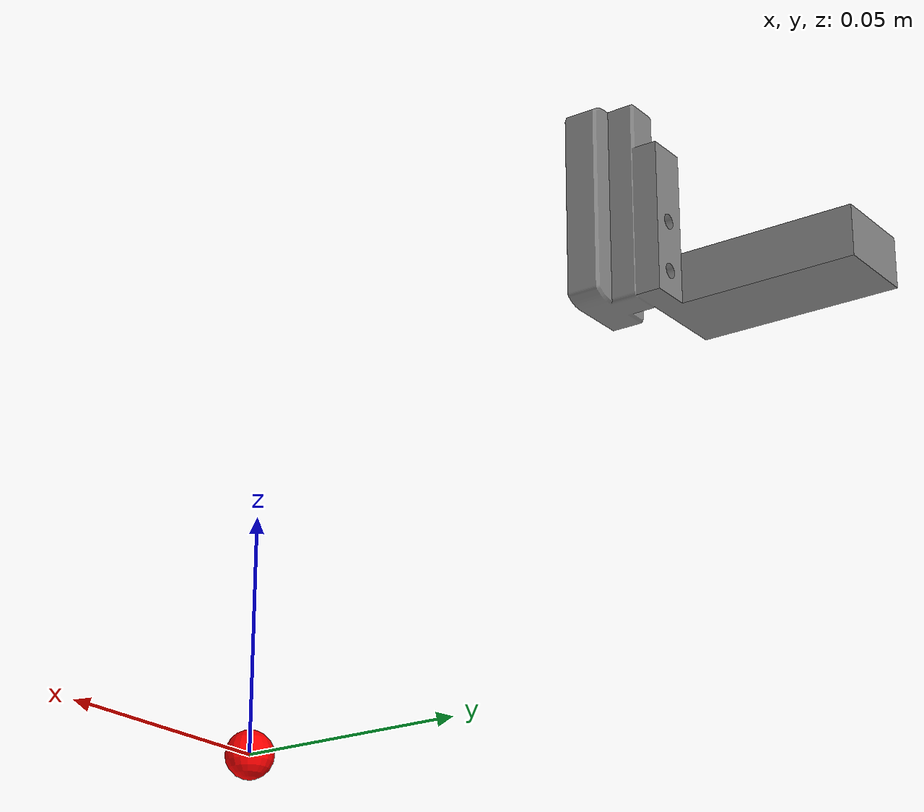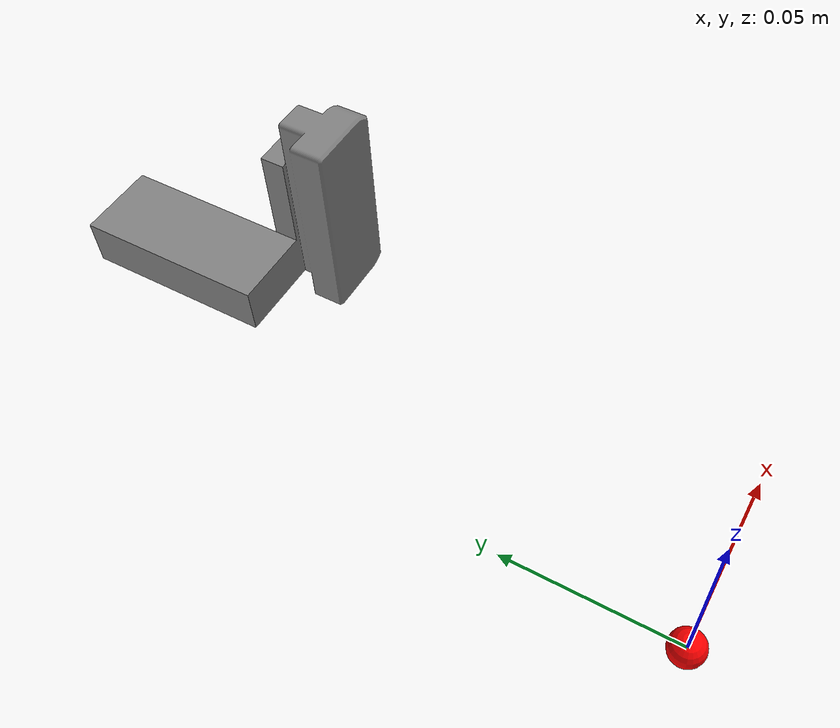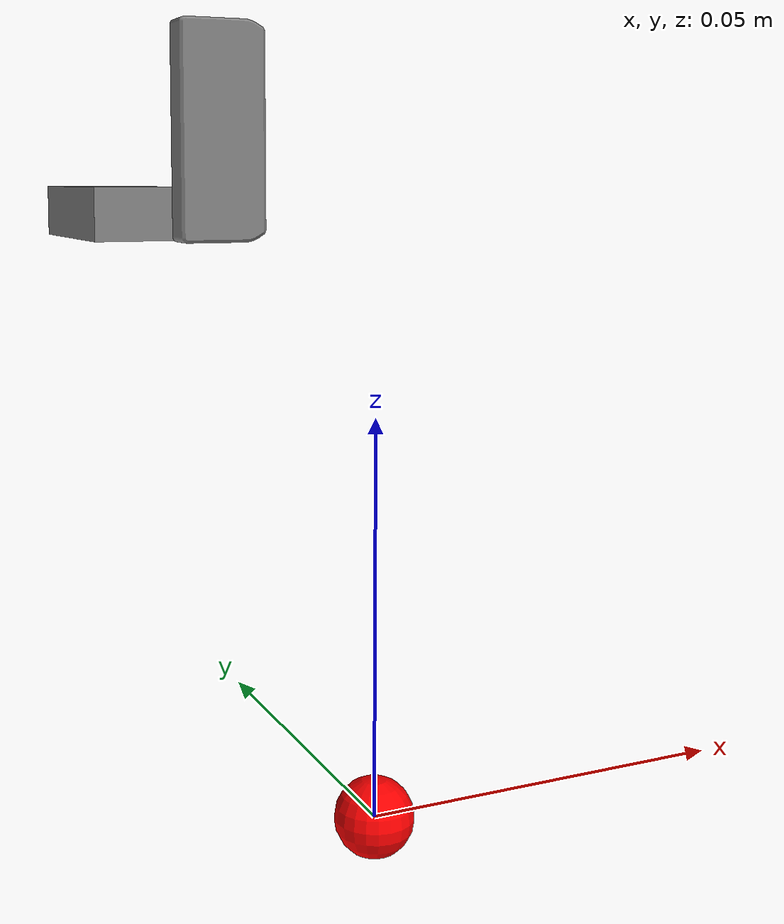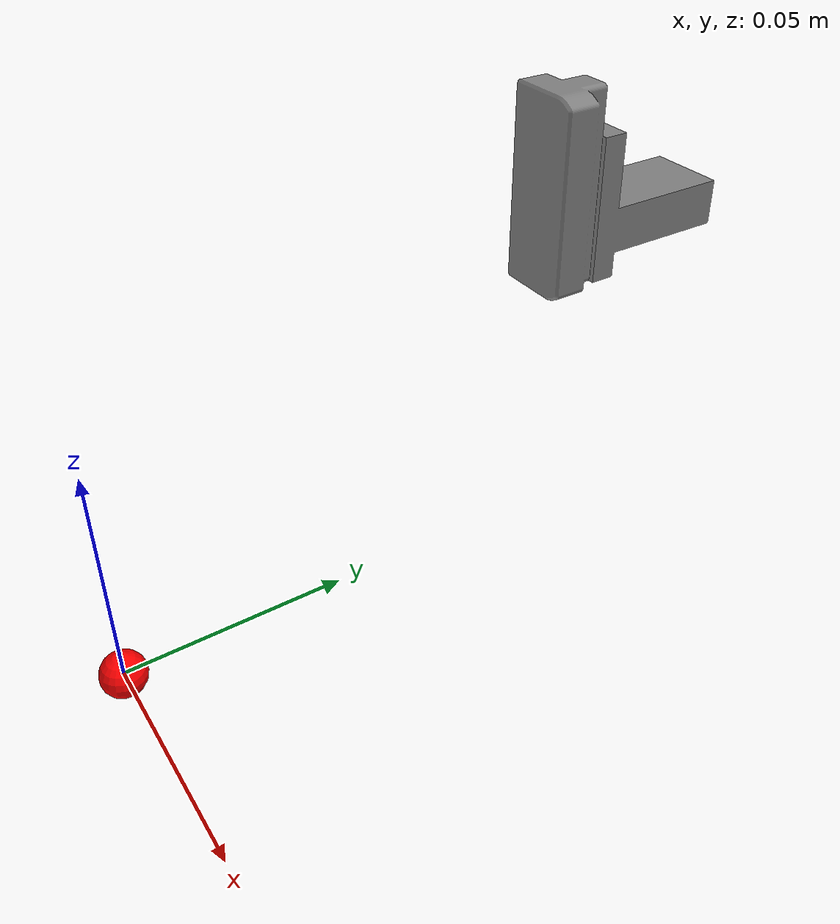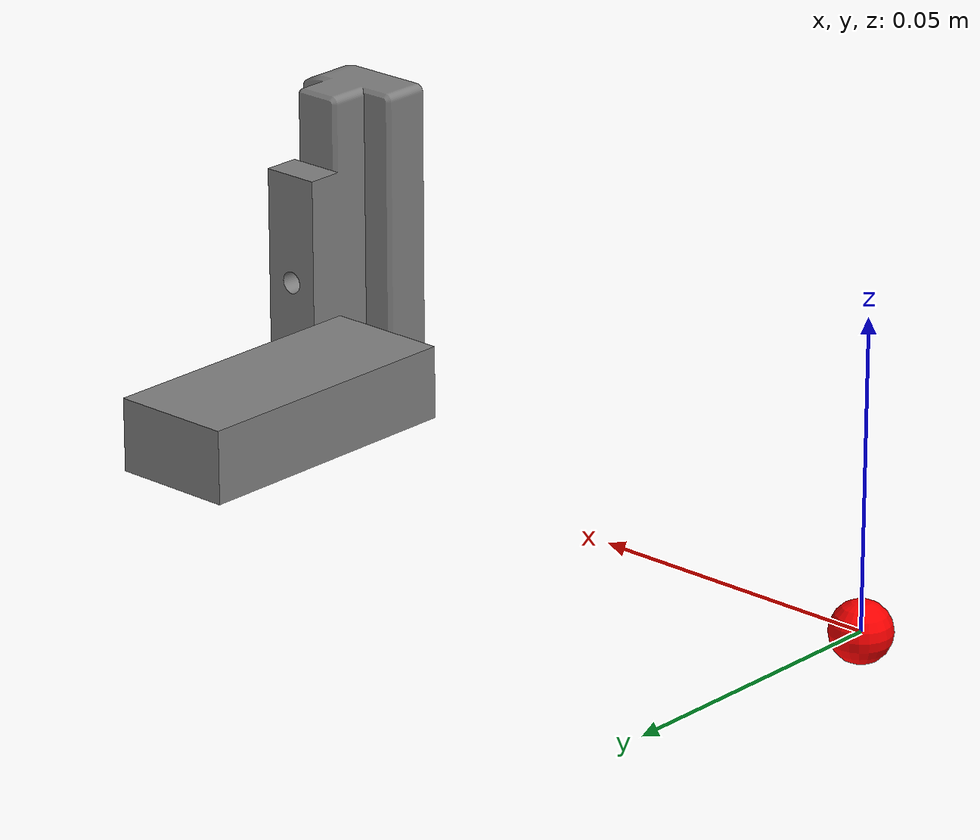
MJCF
<!--
单独查看xml文件的内容，方便调试和验证模型定义。
-->

<mujoco model="mesh_checker">
    <compiler angle="radian" meshdir="/home/jt/WorkSpace/Mujoco/ur5_simulation/xml_files/gripper" />

    <asset>
        <mesh name="gripper_mesh" file="gripper_finger01.STL" scale="0.001 0.001 0.001"/>
    </asset>

    <worldbody>
        <light directional="true" diffuse="0.8 0.8 0.8" specular="0.2 0.2 0.2" pos="0 0 5" dir="0 0 -1"/>
        <light pos="0 0 3" dir="0 0 -1" diffuse="1 1 1" ambient="0.4 0.4 0.4"/>

        <camera name="fixed" pos="0 -0.5 0.5" xyaxes="1 0 0 0 1 2"/>

        <body name="origin_marker" pos="0 0 0">
            <geom type="sphere" size="0.005" rgba="1 0 0 1" />
        </body>

        <body name="test_part" pos="0 0 0.1">
            <geom type="mesh" mesh="gripper_mesh" rgba="0.5 0.5 0.5 1"/>
        </body>
    </worldbody>
</mujoco>
